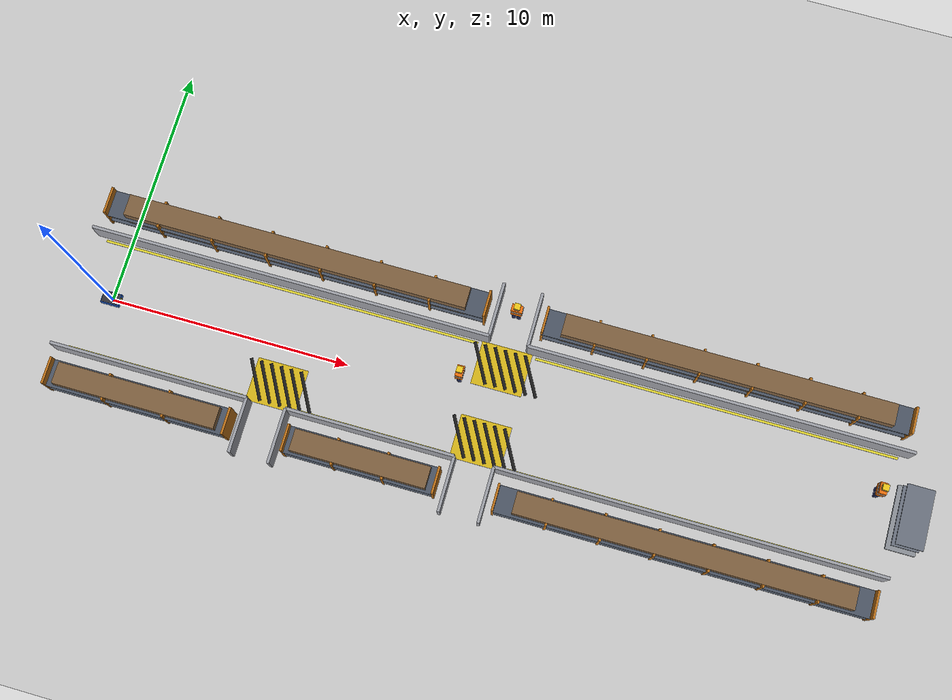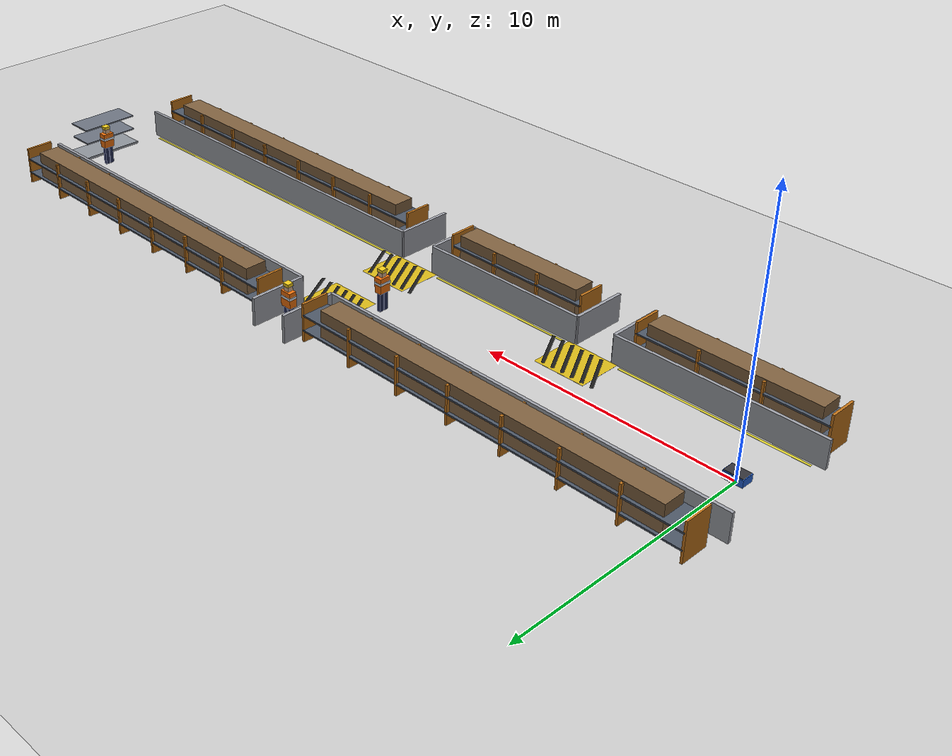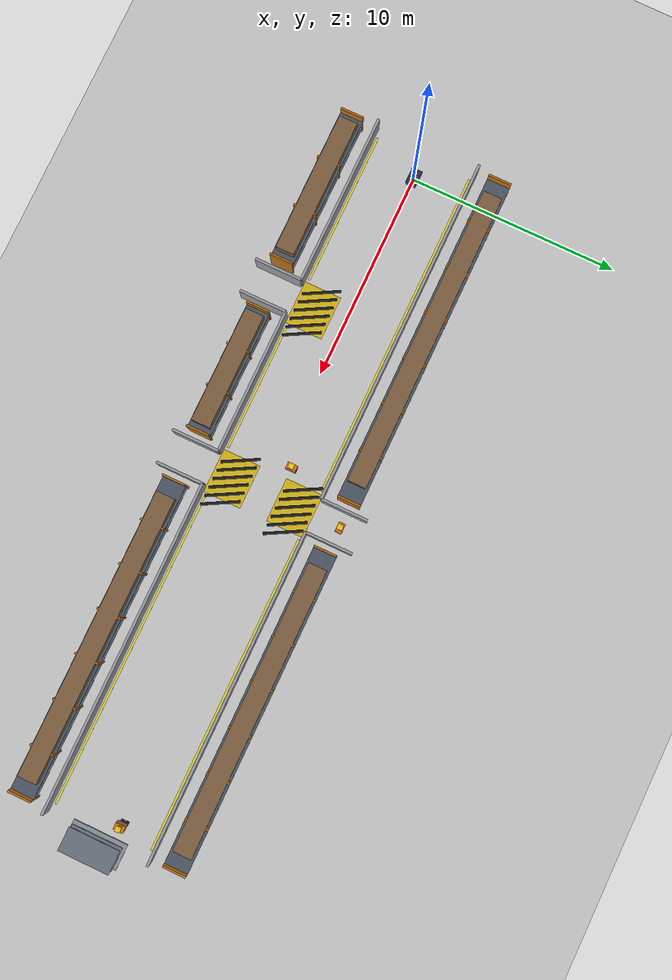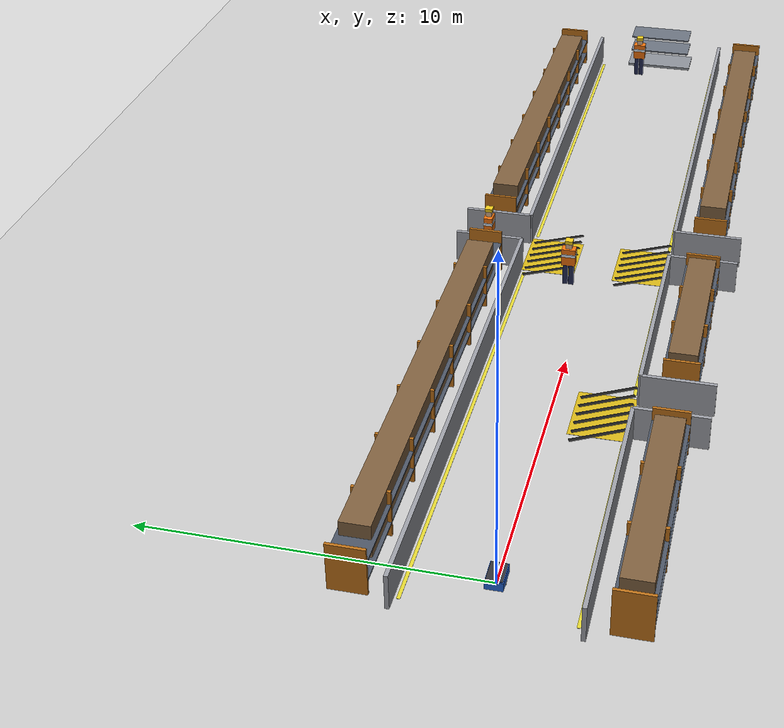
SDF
<?xml version="1.0" ?>
<sdf version="1.6">
  <world name="final_demo">

    <include><uri>model://sun</uri></include>
    <include><uri>model://ground_plane</uri></include>
    <scene><ambient>0.65 0.65 0.68 1</ambient><background>0.78 0.82 0.86 1</background>
      <shadows>true</shadows></scene>

    <plugin name="gazebo_ros_state" filename="libgazebo_ros_state.so">
      <ros><namespace>/gazebo</namespace></ros>
      <update_rate>50.0</update_rate>
    </plugin>

    <model name="wall_0">
      <static>true</static><pose>6.850 2.500 0.550 0 0 0.0000</pose>
      <link name="l">
        <collision name="c"><geometry><box><size>16.700 0.120 1.100</size></box></geometry></collision>
        <visual name="v"><geometry><box><size>16.700 0.120 1.100</size></box></geometry>
          <material><ambient>0.62 0.63 0.66 1</ambient><diffuse>0.62 0.63 0.66 1</diffuse></material></visual>
      </link>
    </model>
    <model name="wall_1">
      <static>true</static><pose>24.650 2.500 0.550 0 0 0.0000</pose>
      <link name="l">
        <collision name="c"><geometry><box><size>15.700 0.120 1.100</size></box></geometry></collision>
        <visual name="v"><geometry><box><size>15.700 0.120 1.100</size></box></geometry>
          <material><ambient>0.62 0.63 0.66 1</ambient><diffuse>0.62 0.63 0.66 1</diffuse></material></visual>
      </link>
    </model>
    <model name="wall_2">
      <static>true</static><pose>2.600 -2.500 0.550 0 0 0.0000</pose>
      <link name="l">
        <collision name="c"><geometry><box><size>8.200 0.120 1.100</size></box></geometry></collision>
        <visual name="v"><geometry><box><size>8.200 0.120 1.100</size></box></geometry>
          <material><ambient>0.62 0.63 0.66 1</ambient><diffuse>0.62 0.63 0.66 1</diffuse></material></visual>
      </link>
    </model>
    <model name="wall_3">
      <static>true</static><pose>11.750 -2.500 0.550 0 0 0.0000</pose>
      <link name="l">
        <collision name="c"><geometry><box><size>6.900 0.120 1.100</size></box></geometry></collision>
        <visual name="v"><geometry><box><size>6.900 0.120 1.100</size></box></geometry>
          <material><ambient>0.62 0.63 0.66 1</ambient><diffuse>0.62 0.63 0.66 1</diffuse></material></visual>
      </link>
    </model>
    <model name="wall_4">
      <static>true</static><pose>24.650 -2.500 0.550 0 0 0.0000</pose>
      <link name="l">
        <collision name="c"><geometry><box><size>15.700 0.120 1.100</size></box></geometry></collision>
        <visual name="v"><geometry><box><size>15.700 0.120 1.100</size></box></geometry>
          <material><ambient>0.62 0.63 0.66 1</ambient><diffuse>0.62 0.63 0.66 1</diffuse></material></visual>
      </link>
    </model>
    <model name="wall_5">
      <static>true</static><pose>15.200 3.625 0.550 0 0 0.0000</pose>
      <link name="l">
        <collision name="c"><geometry><box><size>0.120 2.250 1.100</size></box></geometry></collision>
        <visual name="v"><geometry><box><size>0.120 2.250 1.100</size></box></geometry>
          <material><ambient>0.62 0.63 0.66 1</ambient><diffuse>0.62 0.63 0.66 1</diffuse></material></visual>
      </link>
    </model>
    <model name="wall_6">
      <static>true</static><pose>16.800 3.625 0.550 0 0 0.0000</pose>
      <link name="l">
        <collision name="c"><geometry><box><size>0.120 2.250 1.100</size></box></geometry></collision>
        <visual name="v"><geometry><box><size>0.120 2.250 1.100</size></box></geometry>
          <material><ambient>0.62 0.63 0.66 1</ambient><diffuse>0.62 0.63 0.66 1</diffuse></material></visual>
      </link>
    </model>
    <model name="wall_7">
      <static>true</static><pose>6.700 -3.625 0.550 0 0 0.0000</pose>
      <link name="l">
        <collision name="c"><geometry><box><size>0.120 2.250 1.100</size></box></geometry></collision>
        <visual name="v"><geometry><box><size>0.120 2.250 1.100</size></box></geometry>
          <material><ambient>0.62 0.63 0.66 1</ambient><diffuse>0.62 0.63 0.66 1</diffuse></material></visual>
      </link>
    </model>
    <model name="wall_8">
      <static>true</static><pose>8.300 -3.625 0.550 0 0 0.0000</pose>
      <link name="l">
        <collision name="c"><geometry><box><size>0.120 2.250 1.100</size></box></geometry></collision>
        <visual name="v"><geometry><box><size>0.120 2.250 1.100</size></box></geometry>
          <material><ambient>0.62 0.63 0.66 1</ambient><diffuse>0.62 0.63 0.66 1</diffuse></material></visual>
      </link>
    </model>
    <model name="wall_9">
      <static>true</static><pose>15.200 -3.625 0.550 0 0 0.0000</pose>
      <link name="l">
        <collision name="c"><geometry><box><size>0.120 2.250 1.100</size></box></geometry></collision>
        <visual name="v"><geometry><box><size>0.120 2.250 1.100</size></box></geometry>
          <material><ambient>0.62 0.63 0.66 1</ambient><diffuse>0.62 0.63 0.66 1</diffuse></material></visual>
      </link>
    </model>
    <model name="wall_10">
      <static>true</static><pose>16.800 -3.625 0.550 0 0 0.0000</pose>
      <link name="l">
        <collision name="c"><geometry><box><size>0.120 2.250 1.100</size></box></geometry></collision>
        <visual name="v"><geometry><box><size>0.120 2.250 1.100</size></box></geometry>
          <material><ambient>0.62 0.63 0.66 1</ambient><diffuse>0.62 0.63 0.66 1</diffuse></material></visual>
      </link>
    </model>
    <model name="rack_shelf_0">
      <static>true</static><pose>6.850 3.650 0.450 0 0 0.0000</pose>
      <link name="l">
        <visual name="v"><geometry><box><size>15.900 1.100 0.060</size></box></geometry>
          <material><ambient>0.30 0.34 0.40 1</ambient><diffuse>0.30 0.34 0.40 1</diffuse></material></visual>
      </link>
    </model>
    <model name="rack_shelf_1">
      <static>true</static><pose>6.850 3.650 1.050 0 0 0.0000</pose>
      <link name="l">
        <visual name="v"><geometry><box><size>15.900 1.100 0.060</size></box></geometry>
          <material><ambient>0.30 0.34 0.40 1</ambient><diffuse>0.30 0.34 0.40 1</diffuse></material></visual>
      </link>
    </model>
    <model name="rack_post_2">
      <static>true</static><pose>-1.100 3.650 0.750 0 0 0.0000</pose>
      <link name="l">
        <visual name="v"><geometry><box><size>0.090 1.100 1.500</size></box></geometry>
          <material><ambient>0.75 0.45 0.10 1</ambient><diffuse>0.75 0.45 0.10 1</diffuse></material></visual>
      </link>
    </model>
    <model name="rack_post_3">
      <static>true</static><pose>1.171 3.650 0.750 0 0 0.0000</pose>
      <link name="l">
        <visual name="v"><geometry><box><size>0.090 1.100 1.500</size></box></geometry>
          <material><ambient>0.75 0.45 0.10 1</ambient><diffuse>0.75 0.45 0.10 1</diffuse></material></visual>
      </link>
    </model>
    <model name="rack_post_4">
      <static>true</static><pose>3.443 3.650 0.750 0 0 0.0000</pose>
      <link name="l">
        <visual name="v"><geometry><box><size>0.090 1.100 1.500</size></box></geometry>
          <material><ambient>0.75 0.45 0.10 1</ambient><diffuse>0.75 0.45 0.10 1</diffuse></material></visual>
      </link>
    </model>
    <model name="rack_post_5">
      <static>true</static><pose>5.714 3.650 0.750 0 0 0.0000</pose>
      <link name="l">
        <visual name="v"><geometry><box><size>0.090 1.100 1.500</size></box></geometry>
          <material><ambient>0.75 0.45 0.10 1</ambient><diffuse>0.75 0.45 0.10 1</diffuse></material></visual>
      </link>
    </model>
    <model name="rack_post_6">
      <static>true</static><pose>7.986 3.650 0.750 0 0 0.0000</pose>
      <link name="l">
        <visual name="v"><geometry><box><size>0.090 1.100 1.500</size></box></geometry>
          <material><ambient>0.75 0.45 0.10 1</ambient><diffuse>0.75 0.45 0.10 1</diffuse></material></visual>
      </link>
    </model>
    <model name="rack_post_7">
      <static>true</static><pose>10.257 3.650 0.750 0 0 0.0000</pose>
      <link name="l">
        <visual name="v"><geometry><box><size>0.090 1.100 1.500</size></box></geometry>
          <material><ambient>0.75 0.45 0.10 1</ambient><diffuse>0.75 0.45 0.10 1</diffuse></material></visual>
      </link>
    </model>
    <model name="rack_post_8">
      <static>true</static><pose>12.529 3.650 0.750 0 0 0.0000</pose>
      <link name="l">
        <visual name="v"><geometry><box><size>0.090 1.100 1.500</size></box></geometry>
          <material><ambient>0.75 0.45 0.10 1</ambient><diffuse>0.75 0.45 0.10 1</diffuse></material></visual>
      </link>
    </model>
    <model name="rack_post_9">
      <static>true</static><pose>14.800 3.650 0.750 0 0 0.0000</pose>
      <link name="l">
        <visual name="v"><geometry><box><size>0.090 1.100 1.500</size></box></geometry>
          <material><ambient>0.75 0.45 0.10 1</ambient><diffuse>0.75 0.45 0.10 1</diffuse></material></visual>
      </link>
    </model>
    <model name="rack_load_10">
      <static>true</static><pose>6.850 3.650 0.720 0 0 0.0000</pose>
      <link name="l">
        <visual name="v"><geometry><box><size>14.310 0.880 0.450</size></box></geometry>
          <material><ambient>0.55 0.42 0.28 1</ambient><diffuse>0.55 0.42 0.28 1</diffuse></material></visual>
      </link>
    </model>
    <model name="rack_load_11">
      <static>true</static><pose>6.850 3.650 1.320 0 0 0.0000</pose>
      <link name="l">
        <visual name="v"><geometry><box><size>14.310 0.880 0.450</size></box></geometry>
          <material><ambient>0.50 0.38 0.25 1</ambient><diffuse>0.50 0.38 0.25 1</diffuse></material></visual>
      </link>
    </model>
    <model name="rack_shelf_12">
      <static>true</static><pose>24.650 3.650 0.450 0 0 0.0000</pose>
      <link name="l">
        <visual name="v"><geometry><box><size>14.900 1.100 0.060</size></box></geometry>
          <material><ambient>0.30 0.34 0.40 1</ambient><diffuse>0.30 0.34 0.40 1</diffuse></material></visual>
      </link>
    </model>
    <model name="rack_shelf_13">
      <static>true</static><pose>24.650 3.650 1.050 0 0 0.0000</pose>
      <link name="l">
        <visual name="v"><geometry><box><size>14.900 1.100 0.060</size></box></geometry>
          <material><ambient>0.30 0.34 0.40 1</ambient><diffuse>0.30 0.34 0.40 1</diffuse></material></visual>
      </link>
    </model>
    <model name="rack_post_14">
      <static>true</static><pose>17.200 3.650 0.750 0 0 0.0000</pose>
      <link name="l">
        <visual name="v"><geometry><box><size>0.090 1.100 1.500</size></box></geometry>
          <material><ambient>0.75 0.45 0.10 1</ambient><diffuse>0.75 0.45 0.10 1</diffuse></material></visual>
      </link>
    </model>
    <model name="rack_post_15">
      <static>true</static><pose>19.329 3.650 0.750 0 0 0.0000</pose>
      <link name="l">
        <visual name="v"><geometry><box><size>0.090 1.100 1.500</size></box></geometry>
          <material><ambient>0.75 0.45 0.10 1</ambient><diffuse>0.75 0.45 0.10 1</diffuse></material></visual>
      </link>
    </model>
    <model name="rack_post_16">
      <static>true</static><pose>21.457 3.650 0.750 0 0 0.0000</pose>
      <link name="l">
        <visual name="v"><geometry><box><size>0.090 1.100 1.500</size></box></geometry>
          <material><ambient>0.75 0.45 0.10 1</ambient><diffuse>0.75 0.45 0.10 1</diffuse></material></visual>
      </link>
    </model>
    <model name="rack_post_17">
      <static>true</static><pose>23.586 3.650 0.750 0 0 0.0000</pose>
      <link name="l">
        <visual name="v"><geometry><box><size>0.090 1.100 1.500</size></box></geometry>
          <material><ambient>0.75 0.45 0.10 1</ambient><diffuse>0.75 0.45 0.10 1</diffuse></material></visual>
      </link>
    </model>
    <model name="rack_post_18">
      <static>true</static><pose>25.714 3.650 0.750 0 0 0.0000</pose>
      <link name="l">
        <visual name="v"><geometry><box><size>0.090 1.100 1.500</size></box></geometry>
          <material><ambient>0.75 0.45 0.10 1</ambient><diffuse>0.75 0.45 0.10 1</diffuse></material></visual>
      </link>
    </model>
    <model name="rack_post_19">
      <static>true</static><pose>27.843 3.650 0.750 0 0 0.0000</pose>
      <link name="l">
        <visual name="v"><geometry><box><size>0.090 1.100 1.500</size></box></geometry>
          <material><ambient>0.75 0.45 0.10 1</ambient><diffuse>0.75 0.45 0.10 1</diffuse></material></visual>
      </link>
    </model>
    <model name="rack_post_20">
      <static>true</static><pose>29.971 3.650 0.750 0 0 0.0000</pose>
      <link name="l">
        <visual name="v"><geometry><box><size>0.090 1.100 1.500</size></box></geometry>
          <material><ambient>0.75 0.45 0.10 1</ambient><diffuse>0.75 0.45 0.10 1</diffuse></material></visual>
      </link>
    </model>
    <model name="rack_post_21">
      <static>true</static><pose>32.100 3.650 0.750 0 0 0.0000</pose>
      <link name="l">
        <visual name="v"><geometry><box><size>0.090 1.100 1.500</size></box></geometry>
          <material><ambient>0.75 0.45 0.10 1</ambient><diffuse>0.75 0.45 0.10 1</diffuse></material></visual>
      </link>
    </model>
    <model name="rack_load_22">
      <static>true</static><pose>24.650 3.650 0.720 0 0 0.0000</pose>
      <link name="l">
        <visual name="v"><geometry><box><size>13.410 0.880 0.450</size></box></geometry>
          <material><ambient>0.55 0.42 0.28 1</ambient><diffuse>0.55 0.42 0.28 1</diffuse></material></visual>
      </link>
    </model>
    <model name="rack_load_23">
      <static>true</static><pose>24.650 3.650 1.320 0 0 0.0000</pose>
      <link name="l">
        <visual name="v"><geometry><box><size>13.410 0.880 0.450</size></box></geometry>
          <material><ambient>0.50 0.38 0.25 1</ambient><diffuse>0.50 0.38 0.25 1</diffuse></material></visual>
      </link>
    </model>
    <model name="rack_shelf_24">
      <static>true</static><pose>2.600 -3.650 0.450 0 0 0.0000</pose>
      <link name="l">
        <visual name="v"><geometry><box><size>7.400 1.100 0.060</size></box></geometry>
          <material><ambient>0.30 0.34 0.40 1</ambient><diffuse>0.30 0.34 0.40 1</diffuse></material></visual>
      </link>
    </model>
    <model name="rack_shelf_25">
      <static>true</static><pose>2.600 -3.650 1.050 0 0 0.0000</pose>
      <link name="l">
        <visual name="v"><geometry><box><size>7.400 1.100 0.060</size></box></geometry>
          <material><ambient>0.30 0.34 0.40 1</ambient><diffuse>0.30 0.34 0.40 1</diffuse></material></visual>
      </link>
    </model>
    <model name="rack_post_26">
      <static>true</static><pose>-1.100 -3.650 0.750 0 0 0.0000</pose>
      <link name="l">
        <visual name="v"><geometry><box><size>0.090 1.100 1.500</size></box></geometry>
          <material><ambient>0.75 0.45 0.10 1</ambient><diffuse>0.75 0.45 0.10 1</diffuse></material></visual>
      </link>
    </model>
    <model name="rack_post_27">
      <static>true</static><pose>1.367 -3.650 0.750 0 0 0.0000</pose>
      <link name="l">
        <visual name="v"><geometry><box><size>0.090 1.100 1.500</size></box></geometry>
          <material><ambient>0.75 0.45 0.10 1</ambient><diffuse>0.75 0.45 0.10 1</diffuse></material></visual>
      </link>
    </model>
    <model name="rack_post_28">
      <static>true</static><pose>3.833 -3.650 0.750 0 0 0.0000</pose>
      <link name="l">
        <visual name="v"><geometry><box><size>0.090 1.100 1.500</size></box></geometry>
          <material><ambient>0.75 0.45 0.10 1</ambient><diffuse>0.75 0.45 0.10 1</diffuse></material></visual>
      </link>
    </model>
    <model name="rack_post_29">
      <static>true</static><pose>6.300 -3.650 0.750 0 0 0.0000</pose>
      <link name="l">
        <visual name="v"><geometry><box><size>0.090 1.100 1.500</size></box></geometry>
          <material><ambient>0.75 0.45 0.10 1</ambient><diffuse>0.75 0.45 0.10 1</diffuse></material></visual>
      </link>
    </model>
    <model name="rack_load_30">
      <static>true</static><pose>2.600 -3.650 0.720 0 0 0.0000</pose>
      <link name="l">
        <visual name="v"><geometry><box><size>6.660 0.880 0.450</size></box></geometry>
          <material><ambient>0.55 0.42 0.28 1</ambient><diffuse>0.55 0.42 0.28 1</diffuse></material></visual>
      </link>
    </model>
    <model name="rack_load_31">
      <static>true</static><pose>2.600 -3.650 1.320 0 0 0.0000</pose>
      <link name="l">
        <visual name="v"><geometry><box><size>6.660 0.880 0.450</size></box></geometry>
          <material><ambient>0.50 0.38 0.25 1</ambient><diffuse>0.50 0.38 0.25 1</diffuse></material></visual>
      </link>
    </model>
    <model name="rack_shelf_32">
      <static>true</static><pose>11.750 -3.650 0.450 0 0 0.0000</pose>
      <link name="l">
        <visual name="v"><geometry><box><size>6.100 1.100 0.060</size></box></geometry>
          <material><ambient>0.30 0.34 0.40 1</ambient><diffuse>0.30 0.34 0.40 1</diffuse></material></visual>
      </link>
    </model>
    <model name="rack_shelf_33">
      <static>true</static><pose>11.750 -3.650 1.050 0 0 0.0000</pose>
      <link name="l">
        <visual name="v"><geometry><box><size>6.100 1.100 0.060</size></box></geometry>
          <material><ambient>0.30 0.34 0.40 1</ambient><diffuse>0.30 0.34 0.40 1</diffuse></material></visual>
      </link>
    </model>
    <model name="rack_post_34">
      <static>true</static><pose>8.700 -3.650 0.750 0 0 0.0000</pose>
      <link name="l">
        <visual name="v"><geometry><box><size>0.090 1.100 1.500</size></box></geometry>
          <material><ambient>0.75 0.45 0.10 1</ambient><diffuse>0.75 0.45 0.10 1</diffuse></material></visual>
      </link>
    </model>
    <model name="rack_post_35">
      <static>true</static><pose>10.733 -3.650 0.750 0 0 0.0000</pose>
      <link name="l">
        <visual name="v"><geometry><box><size>0.090 1.100 1.500</size></box></geometry>
          <material><ambient>0.75 0.45 0.10 1</ambient><diffuse>0.75 0.45 0.10 1</diffuse></material></visual>
      </link>
    </model>
    <model name="rack_post_36">
      <static>true</static><pose>12.767 -3.650 0.750 0 0 0.0000</pose>
      <link name="l">
        <visual name="v"><geometry><box><size>0.090 1.100 1.500</size></box></geometry>
          <material><ambient>0.75 0.45 0.10 1</ambient><diffuse>0.75 0.45 0.10 1</diffuse></material></visual>
      </link>
    </model>
    <model name="rack_post_37">
      <static>true</static><pose>14.800 -3.650 0.750 0 0 0.0000</pose>
      <link name="l">
        <visual name="v"><geometry><box><size>0.090 1.100 1.500</size></box></geometry>
          <material><ambient>0.75 0.45 0.10 1</ambient><diffuse>0.75 0.45 0.10 1</diffuse></material></visual>
      </link>
    </model>
    <model name="rack_load_38">
      <static>true</static><pose>11.750 -3.650 0.720 0 0 0.0000</pose>
      <link name="l">
        <visual name="v"><geometry><box><size>5.490 0.880 0.450</size></box></geometry>
          <material><ambient>0.55 0.42 0.28 1</ambient><diffuse>0.55 0.42 0.28 1</diffuse></material></visual>
      </link>
    </model>
    <model name="rack_load_39">
      <static>true</static><pose>11.750 -3.650 1.320 0 0 0.0000</pose>
      <link name="l">
        <visual name="v"><geometry><box><size>5.490 0.880 0.450</size></box></geometry>
          <material><ambient>0.50 0.38 0.25 1</ambient><diffuse>0.50 0.38 0.25 1</diffuse></material></visual>
      </link>
    </model>
    <model name="rack_shelf_40">
      <static>true</static><pose>24.650 -3.650 0.450 0 0 0.0000</pose>
      <link name="l">
        <visual name="v"><geometry><box><size>14.900 1.100 0.060</size></box></geometry>
          <material><ambient>0.30 0.34 0.40 1</ambient><diffuse>0.30 0.34 0.40 1</diffuse></material></visual>
      </link>
    </model>
    <model name="rack_shelf_41">
      <static>true</static><pose>24.650 -3.650 1.050 0 0 0.0000</pose>
      <link name="l">
        <visual name="v"><geometry><box><size>14.900 1.100 0.060</size></box></geometry>
          <material><ambient>0.30 0.34 0.40 1</ambient><diffuse>0.30 0.34 0.40 1</diffuse></material></visual>
      </link>
    </model>
    <model name="rack_post_42">
      <static>true</static><pose>17.200 -3.650 0.750 0 0 0.0000</pose>
      <link name="l">
        <visual name="v"><geometry><box><size>0.090 1.100 1.500</size></box></geometry>
          <material><ambient>0.75 0.45 0.10 1</ambient><diffuse>0.75 0.45 0.10 1</diffuse></material></visual>
      </link>
    </model>
    <model name="rack_post_43">
      <static>true</static><pose>19.329 -3.650 0.750 0 0 0.0000</pose>
      <link name="l">
        <visual name="v"><geometry><box><size>0.090 1.100 1.500</size></box></geometry>
          <material><ambient>0.75 0.45 0.10 1</ambient><diffuse>0.75 0.45 0.10 1</diffuse></material></visual>
      </link>
    </model>
    <model name="rack_post_44">
      <static>true</static><pose>21.457 -3.650 0.750 0 0 0.0000</pose>
      <link name="l">
        <visual name="v"><geometry><box><size>0.090 1.100 1.500</size></box></geometry>
          <material><ambient>0.75 0.45 0.10 1</ambient><diffuse>0.75 0.45 0.10 1</diffuse></material></visual>
      </link>
    </model>
    <model name="rack_post_45">
      <static>true</static><pose>23.586 -3.650 0.750 0 0 0.0000</pose>
      <link name="l">
        <visual name="v"><geometry><box><size>0.090 1.100 1.500</size></box></geometry>
          <material><ambient>0.75 0.45 0.10 1</ambient><diffuse>0.75 0.45 0.10 1</diffuse></material></visual>
      </link>
    </model>
    <model name="rack_post_46">
      <static>true</static><pose>25.714 -3.650 0.750 0 0 0.0000</pose>
      <link name="l">
        <visual name="v"><geometry><box><size>0.090 1.100 1.500</size></box></geometry>
          <material><ambient>0.75 0.45 0.10 1</ambient><diffuse>0.75 0.45 0.10 1</diffuse></material></visual>
      </link>
    </model>
    <model name="rack_post_47">
      <static>true</static><pose>27.843 -3.650 0.750 0 0 0.0000</pose>
      <link name="l">
        <visual name="v"><geometry><box><size>0.090 1.100 1.500</size></box></geometry>
          <material><ambient>0.75 0.45 0.10 1</ambient><diffuse>0.75 0.45 0.10 1</diffuse></material></visual>
      </link>
    </model>
    <model name="rack_post_48">
      <static>true</static><pose>29.971 -3.650 0.750 0 0 0.0000</pose>
      <link name="l">
        <visual name="v"><geometry><box><size>0.090 1.100 1.500</size></box></geometry>
          <material><ambient>0.75 0.45 0.10 1</ambient><diffuse>0.75 0.45 0.10 1</diffuse></material></visual>
      </link>
    </model>
    <model name="rack_post_49">
      <static>true</static><pose>32.100 -3.650 0.750 0 0 0.0000</pose>
      <link name="l">
        <visual name="v"><geometry><box><size>0.090 1.100 1.500</size></box></geometry>
          <material><ambient>0.75 0.45 0.10 1</ambient><diffuse>0.75 0.45 0.10 1</diffuse></material></visual>
      </link>
    </model>
    <model name="rack_load_50">
      <static>true</static><pose>24.650 -3.650 0.720 0 0 0.0000</pose>
      <link name="l">
        <visual name="v"><geometry><box><size>13.410 0.880 0.450</size></box></geometry>
          <material><ambient>0.55 0.42 0.28 1</ambient><diffuse>0.55 0.42 0.28 1</diffuse></material></visual>
      </link>
    </model>
    <model name="rack_load_51">
      <static>true</static><pose>24.650 -3.650 1.320 0 0 0.0000</pose>
      <link name="l">
        <visual name="v"><geometry><box><size>13.410 0.880 0.450</size></box></geometry>
          <material><ambient>0.50 0.38 0.25 1</ambient><diffuse>0.50 0.38 0.25 1</diffuse></material></visual>
      </link>
    </model>
    <model name="lane_n0">
      <static>true</static><pose>6.850 2.320 0.004 0 0 0.0000</pose>
      <link name="l">
        <visual name="v"><geometry><box><size>15.900 0.100 0.008</size></box></geometry>
          <material><ambient>0.90 0.85 0.20 1</ambient><diffuse>0.90 0.85 0.20 1</diffuse></material></visual>
      </link>
    </model>
    <model name="lane_n1">
      <static>true</static><pose>24.650 2.320 0.004 0 0 0.0000</pose>
      <link name="l">
        <visual name="v"><geometry><box><size>14.900 0.100 0.008</size></box></geometry>
          <material><ambient>0.90 0.85 0.20 1</ambient><diffuse>0.90 0.85 0.20 1</diffuse></material></visual>
      </link>
    </model>
    <model name="lane_s0">
      <static>true</static><pose>2.600 -2.320 0.004 0 0 0.0000</pose>
      <link name="l">
        <visual name="v"><geometry><box><size>7.400 0.100 0.008</size></box></geometry>
          <material><ambient>0.90 0.85 0.20 1</ambient><diffuse>0.90 0.85 0.20 1</diffuse></material></visual>
      </link>
    </model>
    <model name="lane_s1">
      <static>true</static><pose>11.750 -2.320 0.004 0 0 0.0000</pose>
      <link name="l">
        <visual name="v"><geometry><box><size>6.100 0.100 0.008</size></box></geometry>
          <material><ambient>0.90 0.85 0.20 1</ambient><diffuse>0.90 0.85 0.20 1</diffuse></material></visual>
      </link>
    </model>
    <model name="lane_s2">
      <static>true</static><pose>24.650 -2.320 0.004 0 0 0.0000</pose>
      <link name="l">
        <visual name="v"><geometry><box><size>14.900 0.100 0.008</size></box></geometry>
          <material><ambient>0.90 0.85 0.20 1</ambient><diffuse>0.90 0.85 0.20 1</diffuse></material></visual>
      </link>
    </model>
    <model name="hazard_0">
      <static>true</static><pose>16.000 1.550 0.003 0 0 0.0000</pose>
      <link name="l">
        <visual name="v"><geometry><box><size>2.100 1.800 0.006</size></box></geometry>
          <material><ambient>0.85 0.72 0.10 1</ambient><diffuse>0.85 0.72 0.10 1</diffuse></material></visual>
      </link>
    </model>
    <model name="hatch_0_0">
      <static>true</static><pose>15.100 1.550 0.005 0 0 0.5000</pose>
      <link name="l">
        <visual name="v"><geometry><box><size>0.130 1.800 0.010</size></box></geometry>
          <material><ambient>0.10 0.10 0.10 1</ambient><diffuse>0.10 0.10 0.10 1</diffuse></material></visual>
      </link>
    </model>
    <model name="hatch_0_1">
      <static>true</static><pose>15.520 1.550 0.005 0 0 0.5000</pose>
      <link name="l">
        <visual name="v"><geometry><box><size>0.130 1.800 0.010</size></box></geometry>
          <material><ambient>0.10 0.10 0.10 1</ambient><diffuse>0.10 0.10 0.10 1</diffuse></material></visual>
      </link>
    </model>
    <model name="hatch_0_2">
      <static>true</static><pose>15.940 1.550 0.005 0 0 0.5000</pose>
      <link name="l">
        <visual name="v"><geometry><box><size>0.130 1.800 0.010</size></box></geometry>
          <material><ambient>0.10 0.10 0.10 1</ambient><diffuse>0.10 0.10 0.10 1</diffuse></material></visual>
      </link>
    </model>
    <model name="hatch_0_3">
      <static>true</static><pose>16.360 1.550 0.005 0 0 0.5000</pose>
      <link name="l">
        <visual name="v"><geometry><box><size>0.130 1.800 0.010</size></box></geometry>
          <material><ambient>0.10 0.10 0.10 1</ambient><diffuse>0.10 0.10 0.10 1</diffuse></material></visual>
      </link>
    </model>
    <model name="hatch_0_4">
      <static>true</static><pose>16.780 1.550 0.005 0 0 0.5000</pose>
      <link name="l">
        <visual name="v"><geometry><box><size>0.130 1.800 0.010</size></box></geometry>
          <material><ambient>0.10 0.10 0.10 1</ambient><diffuse>0.10 0.10 0.10 1</diffuse></material></visual>
      </link>
    </model>
    <model name="hatch_0_5">
      <static>true</static><pose>17.200 1.550 0.005 0 0 0.5000</pose>
      <link name="l">
        <visual name="v"><geometry><box><size>0.130 1.800 0.010</size></box></geometry>
          <material><ambient>0.10 0.10 0.10 1</ambient><diffuse>0.10 0.10 0.10 1</diffuse></material></visual>
      </link>
    </model>
    <model name="hazard_1">
      <static>true</static><pose>7.500 -1.550 0.003 0 0 0.0000</pose>
      <link name="l">
        <visual name="v"><geometry><box><size>2.100 1.800 0.006</size></box></geometry>
          <material><ambient>0.85 0.72 0.10 1</ambient><diffuse>0.85 0.72 0.10 1</diffuse></material></visual>
      </link>
    </model>
    <model name="hatch_1_0">
      <static>true</static><pose>6.600 -1.550 0.005 0 0 0.5000</pose>
      <link name="l">
        <visual name="v"><geometry><box><size>0.130 1.800 0.010</size></box></geometry>
          <material><ambient>0.10 0.10 0.10 1</ambient><diffuse>0.10 0.10 0.10 1</diffuse></material></visual>
      </link>
    </model>
    <model name="hatch_1_1">
      <static>true</static><pose>7.020 -1.550 0.005 0 0 0.5000</pose>
      <link name="l">
        <visual name="v"><geometry><box><size>0.130 1.800 0.010</size></box></geometry>
          <material><ambient>0.10 0.10 0.10 1</ambient><diffuse>0.10 0.10 0.10 1</diffuse></material></visual>
      </link>
    </model>
    <model name="hatch_1_2">
      <static>true</static><pose>7.440 -1.550 0.005 0 0 0.5000</pose>
      <link name="l">
        <visual name="v"><geometry><box><size>0.130 1.800 0.010</size></box></geometry>
          <material><ambient>0.10 0.10 0.10 1</ambient><diffuse>0.10 0.10 0.10 1</diffuse></material></visual>
      </link>
    </model>
    <model name="hatch_1_3">
      <static>true</static><pose>7.860 -1.550 0.005 0 0 0.5000</pose>
      <link name="l">
        <visual name="v"><geometry><box><size>0.130 1.800 0.010</size></box></geometry>
          <material><ambient>0.10 0.10 0.10 1</ambient><diffuse>0.10 0.10 0.10 1</diffuse></material></visual>
      </link>
    </model>
    <model name="hatch_1_4">
      <static>true</static><pose>8.280 -1.550 0.005 0 0 0.5000</pose>
      <link name="l">
        <visual name="v"><geometry><box><size>0.130 1.800 0.010</size></box></geometry>
          <material><ambient>0.10 0.10 0.10 1</ambient><diffuse>0.10 0.10 0.10 1</diffuse></material></visual>
      </link>
    </model>
    <model name="hatch_1_5">
      <static>true</static><pose>8.700 -1.550 0.005 0 0 0.5000</pose>
      <link name="l">
        <visual name="v"><geometry><box><size>0.130 1.800 0.010</size></box></geometry>
          <material><ambient>0.10 0.10 0.10 1</ambient><diffuse>0.10 0.10 0.10 1</diffuse></material></visual>
      </link>
    </model>
    <model name="hazard_2">
      <static>true</static><pose>16.000 -1.550 0.003 0 0 0.0000</pose>
      <link name="l">
        <visual name="v"><geometry><box><size>2.100 1.800 0.006</size></box></geometry>
          <material><ambient>0.85 0.72 0.10 1</ambient><diffuse>0.85 0.72 0.10 1</diffuse></material></visual>
      </link>
    </model>
    <model name="hatch_2_0">
      <static>true</static><pose>15.100 -1.550 0.005 0 0 0.5000</pose>
      <link name="l">
        <visual name="v"><geometry><box><size>0.130 1.800 0.010</size></box></geometry>
          <material><ambient>0.10 0.10 0.10 1</ambient><diffuse>0.10 0.10 0.10 1</diffuse></material></visual>
      </link>
    </model>
    <model name="hatch_2_1">
      <static>true</static><pose>15.520 -1.550 0.005 0 0 0.5000</pose>
      <link name="l">
        <visual name="v"><geometry><box><size>0.130 1.800 0.010</size></box></geometry>
          <material><ambient>0.10 0.10 0.10 1</ambient><diffuse>0.10 0.10 0.10 1</diffuse></material></visual>
      </link>
    </model>
    <model name="hatch_2_2">
      <static>true</static><pose>15.940 -1.550 0.005 0 0 0.5000</pose>
      <link name="l">
        <visual name="v"><geometry><box><size>0.130 1.800 0.010</size></box></geometry>
          <material><ambient>0.10 0.10 0.10 1</ambient><diffuse>0.10 0.10 0.10 1</diffuse></material></visual>
      </link>
    </model>
    <model name="hatch_2_3">
      <static>true</static><pose>16.360 -1.550 0.005 0 0 0.5000</pose>
      <link name="l">
        <visual name="v"><geometry><box><size>0.130 1.800 0.010</size></box></geometry>
          <material><ambient>0.10 0.10 0.10 1</ambient><diffuse>0.10 0.10 0.10 1</diffuse></material></visual>
      </link>
    </model>
    <model name="hatch_2_4">
      <static>true</static><pose>16.780 -1.550 0.005 0 0 0.5000</pose>
      <link name="l">
        <visual name="v"><geometry><box><size>0.130 1.800 0.010</size></box></geometry>
          <material><ambient>0.10 0.10 0.10 1</ambient><diffuse>0.10 0.10 0.10 1</diffuse></material></visual>
      </link>
    </model>
    <model name="hatch_2_5">
      <static>true</static><pose>17.200 -1.550 0.005 0 0 0.5000</pose>
      <link name="l">
        <visual name="v"><geometry><box><size>0.130 1.800 0.010</size></box></geometry>
          <material><ambient>0.10 0.10 0.10 1</ambient><diffuse>0.10 0.10 0.10 1</diffuse></material></visual>
      </link>
    </model>
    <model name="pick_base">
      <static>true</static><pose>32.900 0.000 0.050 0 0 0.0000</pose>
      <link name="l">
        <visual name="v"><geometry><box><size>1.200 2.600 0.100</size></box></geometry>
          <material><ambient>0.55 0.57 0.60 1</ambient><diffuse>0.55 0.57 0.60 1</diffuse></material></visual>
      </link>
    </model>
    <model name="pick_shelf_0">
      <static>true</static><pose>32.900 0.000 0.700 0 0 0.0000</pose>
      <link name="l">
        <visual name="v"><geometry><box><size>1.100 2.400 0.060</size></box></geometry>
          <material><ambient>0.42 0.45 0.50 1</ambient><diffuse>0.42 0.45 0.50 1</diffuse></material></visual>
      </link>
    </model>
    <model name="pick_shelf_1">
      <static>true</static><pose>32.900 0.000 1.300 0 0 0.0000</pose>
      <link name="l">
        <visual name="v"><geometry><box><size>1.100 2.400 0.060</size></box></geometry>
          <material><ambient>0.42 0.45 0.50 1</ambient><diffuse>0.42 0.45 0.50 1</diffuse></material></visual>
      </link>
    </model>
    <model name="head_at_8">
      <pose>14.500 0.750 0 0 0 3.1416</pose>
      <link name="body">
        <kinematic>true</kinematic>
        <gravity>false</gravity>
        <inertial><mass>70.0</mass>
          <inertia><ixx>1</ixx><iyy>1</iyy><izz>1</izz>
                   <ixy>0</ixy><ixz>0</ixz><iyz>0</iyz></inertia></inertial>
        <visual name="legs_l"><pose>0.000 0.100 0.380 0 0 0</pose>
          <geometry><box><size>0.160 0.160 0.760</size></box></geometry>
          <material><ambient>0.13 0.16 0.32 1</ambient><diffuse>0.13 0.16 0.32 1</diffuse></material></visual>
        <visual name="legs_r"><pose>0.000 -0.100 0.380 0 0 0</pose>
          <geometry><box><size>0.160 0.160 0.760</size></box></geometry>
          <material><ambient>0.13 0.16 0.32 1</ambient><diffuse>0.13 0.16 0.32 1</diffuse></material></visual>
        <visual name="torso"><pose>0.000 0.000 1.060 0 0 0</pose>
          <geometry><box><size>0.300 0.460 0.600</size></box></geometry>
          <material><ambient>0.95 0.45 0.05 1</ambient><diffuse>0.95 0.45 0.05 1</diffuse></material></visual>
        <visual name="band"><pose>0.000 0.000 1.130 0 0 0</pose>
          <geometry><box><size>0.320 0.480 0.100</size></box></geometry>
          <material><ambient>0.85 0.90 0.95 1</ambient><diffuse>0.85 0.90 0.95 1</diffuse></material></visual>
        <visual name="head"><pose>0.000 0.000 1.500 0 0 0</pose>
          <geometry><box><size>0.210 0.210 0.240</size></box></geometry>
          <material><ambient>0.86 0.70 0.56 1</ambient><diffuse>0.86 0.70 0.56 1</diffuse></material></visual>
        <visual name="helmet"><pose>0.000 0.000 1.620 0 0 0</pose>
          <geometry><box><size>0.250 0.250 0.120</size></box></geometry>
          <material><ambient>0.95 0.80 0.10 1</ambient><diffuse>0.95 0.80 0.10 1</diffuse></material></visual>
      </link>
    </model>
    <model name="cross_at_16">
      <pose>16.000 3.800 0 0 0 -1.5708</pose>
      <link name="body">
        <kinematic>true</kinematic>
        <gravity>false</gravity>
        <inertial><mass>70.0</mass>
          <inertia><ixx>1</ixx><iyy>1</iyy><izz>1</izz>
                   <ixy>0</ixy><ixz>0</ixz><iyz>0</iyz></inertia></inertial>
        <visual name="legs_l"><pose>0.000 0.100 0.380 0 0 0</pose>
          <geometry><box><size>0.160 0.160 0.760</size></box></geometry>
          <material><ambient>0.13 0.16 0.32 1</ambient><diffuse>0.13 0.16 0.32 1</diffuse></material></visual>
        <visual name="legs_r"><pose>0.000 -0.100 0.380 0 0 0</pose>
          <geometry><box><size>0.160 0.160 0.760</size></box></geometry>
          <material><ambient>0.13 0.16 0.32 1</ambient><diffuse>0.13 0.16 0.32 1</diffuse></material></visual>
        <visual name="torso"><pose>0.000 0.000 1.060 0 0 0</pose>
          <geometry><box><size>0.300 0.460 0.600</size></box></geometry>
          <material><ambient>0.95 0.45 0.05 1</ambient><diffuse>0.95 0.45 0.05 1</diffuse></material></visual>
        <visual name="band"><pose>0.000 0.000 1.130 0 0 0</pose>
          <geometry><box><size>0.320 0.480 0.100</size></box></geometry>
          <material><ambient>0.85 0.90 0.95 1</ambient><diffuse>0.85 0.90 0.95 1</diffuse></material></visual>
        <visual name="head"><pose>0.000 0.000 1.500 0 0 0</pose>
          <geometry><box><size>0.210 0.210 0.240</size></box></geometry>
          <material><ambient>0.86 0.70 0.56 1</ambient><diffuse>0.86 0.70 0.56 1</diffuse></material></visual>
        <visual name="helmet"><pose>0.000 0.000 1.620 0 0 0</pose>
          <geometry><box><size>0.250 0.250 0.120</size></box></geometry>
          <material><ambient>0.95 0.80 0.10 1</ambient><diffuse>0.95 0.80 0.10 1</diffuse></material></visual>
      </link>
    </model>
    <model name="head_at_24">
      <pose>31.500 0.750 0 0 0 3.1416</pose>
      <link name="body">
        <kinematic>true</kinematic>
        <gravity>false</gravity>
        <inertial><mass>70.0</mass>
          <inertia><ixx>1</ixx><iyy>1</iyy><izz>1</izz>
                   <ixy>0</ixy><ixz>0</ixz><iyz>0</iyz></inertia></inertial>
        <visual name="legs_l"><pose>0.000 0.100 0.380 0 0 0</pose>
          <geometry><box><size>0.160 0.160 0.760</size></box></geometry>
          <material><ambient>0.13 0.16 0.32 1</ambient><diffuse>0.13 0.16 0.32 1</diffuse></material></visual>
        <visual name="legs_r"><pose>0.000 -0.100 0.380 0 0 0</pose>
          <geometry><box><size>0.160 0.160 0.760</size></box></geometry>
          <material><ambient>0.13 0.16 0.32 1</ambient><diffuse>0.13 0.16 0.32 1</diffuse></material></visual>
        <visual name="torso"><pose>0.000 0.000 1.060 0 0 0</pose>
          <geometry><box><size>0.300 0.460 0.600</size></box></geometry>
          <material><ambient>0.95 0.45 0.05 1</ambient><diffuse>0.95 0.45 0.05 1</diffuse></material></visual>
        <visual name="band"><pose>0.000 0.000 1.130 0 0 0</pose>
          <geometry><box><size>0.320 0.480 0.100</size></box></geometry>
          <material><ambient>0.85 0.90 0.95 1</ambient><diffuse>0.85 0.90 0.95 1</diffuse></material></visual>
        <visual name="head"><pose>0.000 0.000 1.500 0 0 0</pose>
          <geometry><box><size>0.210 0.210 0.240</size></box></geometry>
          <material><ambient>0.86 0.70 0.56 1</ambient><diffuse>0.86 0.70 0.56 1</diffuse></material></visual>
        <visual name="helmet"><pose>0.000 0.000 1.620 0 0 0</pose>
          <geometry><box><size>0.250 0.250 0.120</size></box></geometry>
          <material><ambient>0.95 0.80 0.10 1</ambient><diffuse>0.95 0.80 0.10 1</diffuse></material></visual>
      </link>
    </model>

    <model name="amr">
      <!-- z MUST equal the wheel radius (0.1); higher and the wheels float and the
           machine rides on its frictionless casters with no traction. -->
      <pose>0.00 0.00 0.1 0 0 0.00</pose>
      <link name="base_footprint">
        <inertial><mass>60.0</mass>
          <inertia><ixx>1.70</ixx><iyy>3.26</iyy><izz>4.06</izz>
                   <ixy>0</ixy><ixz>0</ixz><iyz>0</iyz></inertia></inertial>
        <collision name="body_c"><pose>0 0 0.14 0 0 0</pose>
          <geometry><box><size>0.75 0.50 0.28</size></box></geometry></collision>
        <visual name="body_v"><pose>0 0 0.14 0 0 0</pose>
          <geometry><box><size>0.75 0.50 0.28</size></box></geometry>
          <material><ambient>0.10 0.28 0.62 1</ambient><diffuse>0.15 0.40 0.85 1</diffuse></material></visual>
        <visual name="deck_v"><pose>0 0 0.29 0 0 0</pose>
          <geometry><box><size>0.70 0.46 0.03</size></box></geometry>
          <material><ambient>0.20 0.20 0.22 1</ambient></material></visual>
        <visual name="nose_v"><pose>0.35 0 0.14 0 0 0</pose>
          <geometry><box><size>0.06 0.30 0.14</size></box></geometry>
          <material><ambient>0.95 0.80 0.10 1</ambient><diffuse>0.95 0.80 0.10 1</diffuse></material></visual>
        <visual name="beacon_v"><pose>0 0 0.40 0 0 0</pose>
          <geometry><cylinder><radius>0.05</radius><length>0.10</length></cylinder></geometry>
          <material><ambient>0.90 0.55 0.05 1</ambient><diffuse>1.0 0.65 0.1 1</diffuse></material></visual>
        <collision name="caster_f"><pose>0.28 0 -0.045 0 0 0</pose>
          <geometry><sphere><radius>0.05</radius></sphere></geometry>
          <surface><friction><ode><mu>0</mu><mu2>0</mu2></ode></friction></surface></collision>
        <collision name="caster_r"><pose>-0.28 0 -0.045 0 0 0</pose>
          <geometry><sphere><radius>0.05</radius></sphere></geometry>
          <surface><friction><ode><mu>0</mu><mu2>0</mu2></ode></friction></surface></collision>
      </link>

      <!-- Link frames stay UNROTATED; the cylinder is laid down by its geometry pose. -->
      <link name="left_wheel">
        <pose>0 0.22 0 0 0 0</pose>
        <inertial><mass>1.5</mass>
          <inertia><ixx>0.005</ixx><iyy>0.008</iyy><izz>0.005</izz>
                   <ixy>0</ixy><ixz>0</ixz><iyz>0</iyz></inertia></inertial>
        <collision name="c"><pose>0 0 0 -1.5708 0 0</pose>
          <geometry><cylinder><radius>0.1</radius><length>0.05</length></cylinder></geometry>
          <surface><friction><ode><mu>1.0</mu><mu2>1.0</mu2></ode></friction></surface></collision>
        <visual name="v"><pose>0 0 0 -1.5708 0 0</pose>
          <geometry><cylinder><radius>0.1</radius><length>0.05</length></cylinder></geometry>
          <material><ambient>0.08 0.08 0.08 1</ambient></material></visual>
      </link>
      <link name="right_wheel">
        <pose>0 -0.22 0 0 0 0</pose>
        <inertial><mass>1.5</mass>
          <inertia><ixx>0.005</ixx><iyy>0.008</iyy><izz>0.005</izz>
                   <ixy>0</ixy><ixz>0</ixz><iyz>0</iyz></inertia></inertial>
        <collision name="c"><pose>0 0 0 -1.5708 0 0</pose>
          <geometry><cylinder><radius>0.1</radius><length>0.05</length></cylinder></geometry>
          <surface><friction><ode><mu>1.0</mu><mu2>1.0</mu2></ode></friction></surface></collision>
        <visual name="v"><pose>0 0 0 -1.5708 0 0</pose>
          <geometry><cylinder><radius>0.1</radius><length>0.05</length></cylinder></geometry>
          <material><ambient>0.08 0.08 0.08 1</ambient></material></visual>
      </link>

      <joint name="left_wheel_joint" type="revolute">
        <parent>base_footprint</parent><child>left_wheel</child>
        <axis><xyz>0 1 0</xyz><limit><lower>-1e16</lower><upper>1e16</upper></limit></axis>
      </joint>
      <joint name="right_wheel_joint" type="revolute">
        <parent>base_footprint</parent><child>right_wheel</child>
        <axis><xyz>0 1 0</xyz><limit><lower>-1e16</lower><upper>1e16</upper></limit></axis>
      </joint>

      <plugin name="diff_drive" filename="libgazebo_ros_diff_drive.so">
        <ros><namespace>/</namespace></ros>
        <update_rate>50</update_rate>
        <left_joint>left_wheel_joint</left_joint>
        <right_joint>right_wheel_joint</right_joint>
        <wheel_separation>0.44</wheel_separation>
        <wheel_diameter>0.2</wheel_diameter>
        <max_wheel_torque>200</max_wheel_torque>
        <!-- rad/s^2; linear limit = this x wheel radius. Must be >= a_brake / radius
             or the plant cannot deliver the stop the safety filter is planning. -->
        <max_wheel_acceleration>12.0</max_wheel_acceleration>
        <command_topic>cmd_vel</command_topic>
        <odometry_topic>odom</odometry_topic>
        <odometry_frame>odom</odometry_frame>
        <robot_base_frame>base_footprint</robot_base_frame>
        <publish_odom>true</publish_odom>
        <publish_odom_tf>true</publish_odom_tf>
        <publish_wheel_tf>true</publish_wheel_tf>
      </plugin>
    </model>

    <gui>
      <camera name="user_camera">
        <pose>-7 -7 9 0 0.62 0.62</pose>
        <track_visual>
          <name>amr</name><static>true</static><use_model_frame>true</use_model_frame>
          <xyz>-9.0 -5.5 9.5</xyz><inherit_yaw>false</inherit_yaw>
        </track_visual>
      </camera>
    </gui>
  </world>
</sdf>
